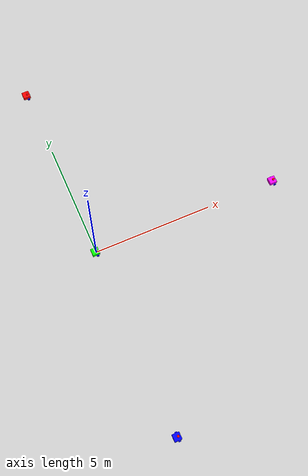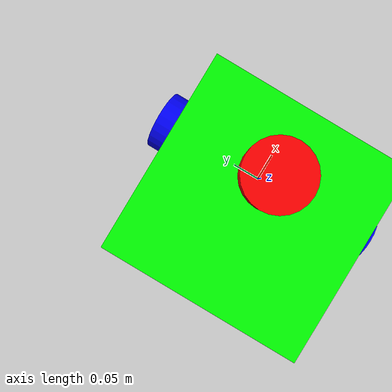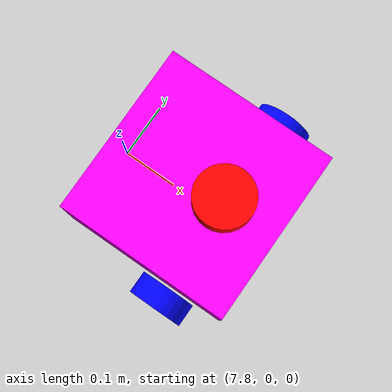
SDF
<?xml version="1.0" ?>
<sdf version="1.9">
    <world name="followTheLeader">
        <physics name="1ms" type="ignored">
            <max_step_size>0.001</max_step_size>
            <real_time_factor>1.0</real_time_factor>
        </physics>
        <plugin
        filename="libignition-gazebo-physics-system.so"
        name="ignition::gazebo::systems::Physics">
        </plugin>
        <plugin
        filename="libignition-gazebo-user-commands-system.so"
        name="ignition::gazebo::systems::UserCommands">
        </plugin>
        <plugin
        filename="libignition-gazebo-scene-broadcaster-system.so"
        name="ignition::gazebo::systems::SceneBroadcaster">
        </plugin>

        <plugin
        filename="libignition-gazebo-sensors-system.so"
        name="ignition::gazebo::systems::Sensors">
            <render_engine>ogre2</render_engine>
        </plugin>

        <light type="directional" name="sun">
            <cast_shadows>true</cast_shadows>
            <pose>0 0 10 0 0 0</pose>
            <diffuse>0.8 0.8 0.8 1</diffuse>
            <specular>0.2 0.2 0.2 1</specular>
            <attenuation>
                <range>1000</range>
                <constant>0.9</constant>
                <linear>0.01</linear>
                <quadratic>0.001</quadratic>
            </attenuation>
            <direction>0.5 0.5 -0.9</direction>
        </light>

        <model name="ground_plane">
            <static>true</static>
            <link name="link">
                <collision name="collision">
                    <geometry>
                        <plane>
                            <normal>0 0 1</normal>
                        </plane>
                    </geometry>
                </collision>
                <visual name="visual">
                    <geometry>
                        <plane>
                            <normal>0 0 1</normal>
                            <size>100 100</size>
                        </plane>
                    </geometry>
                    <material>
                        <ambient>0.8 0.8 0.8 1</ambient>
                        <diffuse>0.8 0.8 0.8 1</diffuse>
                        <specular>0.8 0.8 0.8 1</specular>
                    </material>
                </visual>
            </link>
        </model>

        <model name="rabbitRed">
            <pose>0 8 0 0 0 0</pose>
            <include>
                <name>rabbitRed</name>
                <uri>file://rabbitRed.sdf</uri>
            </include>
        </model>

        <model name="rabbitGreen">
            <pose>0 0 0 0 0 0</pose>
            <include>
                <name>rabbitGreen</name>
                <uri>file://rabbitGreen.sdf</uri>
            </include>
        </model>

        <model name="rabbitBlue">
            <pose>0 -8 0 0 0 0</pose>
            <include>
                <name>rabbitBlue</name>
                <uri>file://rabbitBlue.sdf</uri>
            </include>
        </model>

        <model name="chase">
            <pose>8 0 0 0 0 0</pose>
            <include>
                <name>chase</name>
                <uri>file://chase.sdf</uri>
            </include>
        </model>
    </world>
</sdf>

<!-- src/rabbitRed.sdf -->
<sdf version='1.9'>
  <model name='robot'>
    <link name='base_link'>
      <inertial>
        <pose>0.103125 0 0.0340625 0 0 0</pose>
        <mass>1.6000000000000001</mass>
        <inertia>
          <ixx>0.0096094270833333318</ixx>
          <ixy>0</ixy>
          <ixz>0.0037453124999999999</ixz>
          <iyy>0.013443802083333329</iyy>
          <iyz>0</iyz>
          <izz>0.012459375</izz>
        </inertia>
      </inertial>
      <collision name='base_link_fixed_joint_lump__chassis_collision'>
        <pose>0.04999999999999999 0 0.075 0 0 0</pose>
        <geometry>
          <box>
            <size>0.3 0.3 0.15</size>
          </box>
        </geometry>
      </collision>
      <collision name='base_link_fixed_joint_lump__caster_wheel_collision_1'>
        <pose>0.14 0 0 0 0 0</pose>
        <geometry>
          <sphere>
            <radius>0.050000000000000003</radius>
          </sphere>
        </geometry>
        <surface>
          <contact>
            <ode/>
          </contact>
          <friction>
            <ode>
              <mu>0</mu>
              <mu2>0</mu2>
            </ode>
          </friction>
        </surface>
      </collision>
      <collision name='base_link_fixed_joint_lump__laser_frame_collision_2'>
        <pose>0 0 0.17 0 0 0</pose>
        <geometry>
          <cylinder>
            <length>0.040000000000000001</length>
            <radius>0.050000000000000003</radius>
          </cylinder>
        </geometry>
        <surface>
          <contact>
            <ode/>
          </contact>
          <friction>
            <ode/>
          </friction>
        </surface>
      </collision>
      <visual name='base_link_fixed_joint_lump__chassis_visual'>
        <pose>0.04999999999999999 0 0.075 0 0 0</pose>
        <geometry>
          <box>
            <size>0.3 0.3 0.15</size>
          </box>
        </geometry>
        <material>
          <diffuse>1 0 0 1</diffuse>
          <ambient>1 0 0 1</ambient>
        </material>
      </visual>
      <visual name='base_link_fixed_joint_lump__camera_link_visual_1'>
        <pose>0.205 0 0.08 0 0 0</pose>
        <geometry>
          <box>
            <size>0.01 0.03 0.03</size>
          </box>
        </geometry>
        <material>
          <diffuse>1 0 0 1</diffuse>
          <ambient>1 0 0 1</ambient>
        </material>
      </visual>
      <visual name='base_link_fixed_joint_lump__caster_wheel_visual_2'>
        <pose>0.14 0 0 0 0 0</pose>
        <geometry>
          <sphere>
            <radius>0.050000000000000003</radius>
          </sphere>
        </geometry>
        <material>
          <diffuse>0 0 1 1</diffuse>
          <ambient>0 0 1 1</ambient>
        </material>
      </visual>
      <visual name='base_link_fixed_joint_lump__laser_frame_visual_3'>
        <pose>0 0 0.17 0 0 0</pose>
        <geometry>
          <cylinder>
            <length>0.040000000000000001</length>
            <radius>0.050000000000000003</radius>
          </cylinder>
        </geometry>
        <material>
          <diffuse>1 0 0 1</diffuse>
          <ambient>1 0 0 1</ambient>
        </material>
      </visual>
    </link>
    <joint name='left_wheel_joint' type='revolute'>
      <pose relative_to='base_link'>0 0.175 0 -1.570796326794896 0 0</pose>
      <parent>base_link</parent>
      <child>left_wheel</child>
      <axis>
        <xyz>0 0 1</xyz>
        <limit>
          <lower>-10000000000000000</lower>
          <upper>10000000000000000</upper>
        </limit>
        <dynamics>
          <spring_reference>0</spring_reference>
          <spring_stiffness>0</spring_stiffness>
        </dynamics>
      </axis>
    </joint>
    <link name='left_wheel'>
      <pose relative_to='left_wheel_joint'>0 0 0 0 0 0</pose>
      <inertial>
        <pose>0 0 0 0 0 0</pose>
        <mass>0.10000000000000001</mass>
        <inertia>
          <ixx>7.5833333333333352e-05</ixx>
          <ixy>0</ixy>
          <ixz>0</ixz>
          <iyy>7.5833333333333352e-05</iyy>
          <iyz>0</iyz>
          <izz>0.000125</izz>
        </inertia>
      </inertial>
      <collision name='left_wheel_collision'>
        <pose>0 0 0 0 0 0</pose>
        <geometry>
          <cylinder>
            <length>0.040000000000000001</length>
            <radius>0.050000000000000003</radius>
          </cylinder>
        </geometry>
      </collision>
      <visual name='left_wheel_visual'>
        <pose>0 0 0 0 0 0</pose>
        <geometry>
          <cylinder>
            <length>0.040000000000000001</length>
            <radius>0.050000000000000003</radius>
          </cylinder>
        </geometry>
        <material>
          <diffuse>0 0 1 1</diffuse>
          <ambient>0 0 1 1</ambient>
        </material>
      </visual>
    </link>
    <joint name='right_wheel_joint' type='revolute'>
      <pose relative_to='base_link'>0 -0.175 0 1.570796326794896 0 0</pose>
      <parent>base_link</parent>
      <child>right_wheel</child>
      <axis>
        <xyz>0 0 -1</xyz>
        <limit>
          <lower>-10000000000000000</lower>
          <upper>10000000000000000</upper>
        </limit>
        <dynamics>
          <spring_reference>0</spring_reference>
          <spring_stiffness>0</spring_stiffness>
        </dynamics>
      </axis>
    </joint>
    <link name='right_wheel'>
      <pose relative_to='right_wheel_joint'>0 0 0 0 0 0</pose>
      <inertial>
        <pose>0 0 0 0 0 0</pose>
        <mass>0.10000000000000001</mass>
        <inertia>
          <ixx>7.5833333333333352e-05</ixx>
          <ixy>0</ixy>
          <ixz>0</ixz>
          <iyy>7.5833333333333352e-05</iyy>
          <iyz>0</iyz>
          <izz>0.000125</izz>
        </inertia>
      </inertial>
      <collision name='right_wheel_collision'>
        <pose>0 0 0 0 0 0</pose>
        <geometry>
          <cylinder>
            <length>0.040000000000000001</length>
            <radius>0.050000000000000003</radius>
          </cylinder>
        </geometry>
      </collision>
      <visual name='right_wheel_visual'>
        <pose>0 0 0 0 0 0</pose>
        <geometry>
          <cylinder>
            <length>0.040000000000000001</length>
            <radius>0.050000000000000003</radius>
          </cylinder>
        </geometry>
        <material>
          <diffuse>0 0 1 1</diffuse>
          <ambient>0 0 1 1</ambient>
        </material>
      </visual>
    </link>
    <pose>0 0 0.05 0 0 3.141592653589793</pose>
    <plugin name='ignition::gazebo::systems::DiffDrive' filename='libignition-gazebo-diff-drive-system.so'>
      <left_joint>left_wheel_joint</left_joint>
      <right_joint>right_wheel_joint</right_joint>
      <wheel_separation>0.3</wheel_separation>
      <wheel_radius>0.05</wheel_radius>
      <odom_publish_frequency>10</odom_publish_frequency>
      <topic>cmd_vel_red</topic>
    </plugin>
    <plugin name='ignition::gazebo::systems::JointStatePublisher' filename='libignition-gazebo-joint-state-publisher-system'/>
    <plugin name='ignition::gazebo::systems::OdometryPublisher' filename='libignition-gazebo-odometry-publisher-system'>
      <odom_frame>world</odom_frame>
      <robot_base_frame>base_link</robot_base_frame>
    </plugin>
    <frame name='camera_optical_joint' attached_to='camera_link'>
      <pose>0 0 0 -1.5708 -0 -1.5708</pose>
    </frame>
    <frame name='camera_link_optical' attached_to='camera_optical_joint'/>
    <frame name='camera_joint' attached_to='chassis'>
      <pose>0.305 0 0.08 0 -0 0</pose>
    </frame>
    <frame name='camera_link' attached_to='camera_joint'/>
    <frame name='caster_wheel_joint' attached_to='chassis'>
      <pose>0.24 0 0 0 -0 0</pose>
    </frame>
    <frame name='caster_wheel' attached_to='caster_wheel_joint'/>
    <frame name='laser_joint' attached_to='chassis'>
      <pose>0.1 0 0.17 0 -0 0</pose>
    </frame>
    <frame name='laser_frame' attached_to='laser_joint'/>
    <frame name='chassis_joint' attached_to='base_link'>
      <pose>-0.1 0 0 0 -0 0</pose>
    </frame>
    <frame name='chassis' attached_to='chassis_joint'/>
  </model>
</sdf>

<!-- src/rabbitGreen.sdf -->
<sdf version='1.9'>
  <model name='robot'>
    <link name='base_link'>
      <inertial>
        <pose>0.103125 0 0.0340625 0 0 0</pose>
        <mass>1.6000000000000001</mass>
        <inertia>
          <ixx>0.0096094270833333318</ixx>
          <ixy>0</ixy>
          <ixz>0.0037453124999999999</ixz>
          <iyy>0.013443802083333329</iyy>
          <iyz>0</iyz>
          <izz>0.012459375</izz>
        </inertia>
      </inertial>
      <collision name='base_link_fixed_joint_lump__chassis_collision'>
        <pose>0.04999999999999999 0 0.075 0 0 0</pose>
        <geometry>
          <box>
            <size>0.3 0.3 0.15</size>
          </box>
        </geometry>
      </collision>
      <collision name='base_link_fixed_joint_lump__caster_wheel_collision_1'>
        <pose>0.14 0 0 0 0 0</pose>
        <geometry>
          <sphere>
            <radius>0.050000000000000003</radius>
          </sphere>
        </geometry>
        <surface>
          <contact>
            <ode/>
          </contact>
          <friction>
            <ode>
              <mu>0</mu>
              <mu2>0</mu2>
            </ode>
          </friction>
        </surface>
      </collision>
      <collision name='base_link_fixed_joint_lump__laser_frame_collision_2'>
        <pose>0 0 0.17 0 0 0</pose>
        <geometry>
          <cylinder>
            <length>0.040000000000000001</length>
            <radius>0.050000000000000003</radius>
          </cylinder>
        </geometry>
        <surface>
          <contact>
            <ode/>
          </contact>
          <friction>
            <ode/>
          </friction>
        </surface>
      </collision>
      <visual name='base_link_fixed_joint_lump__chassis_visual'>
        <pose>0.04999999999999999 0 0.075 0 0 0</pose>
        <geometry>
          <box>
            <size>0.3 0.3 0.15</size>
          </box>
        </geometry>
        <material>
          <diffuse>0 1 0 1</diffuse>
          <ambient>0 1 0 1</ambient>
        </material>
      </visual>
      <visual name='base_link_fixed_joint_lump__camera_link_visual_1'>
        <pose>0.205 0 0.08 0 0 0</pose>
        <geometry>
          <box>
            <size>0.01 0.03 0.03</size>
          </box>
        </geometry>
        <material>
          <diffuse>1 0 0 1</diffuse>
          <ambient>1 0 0 1</ambient>
        </material>
      </visual>
      <visual name='base_link_fixed_joint_lump__caster_wheel_visual_2'>
        <pose>0.14 0 0 0 0 0</pose>
        <geometry>
          <sphere>
            <radius>0.050000000000000003</radius>
          </sphere>
        </geometry>
        <material>
          <diffuse>0 0 1 1</diffuse>
          <ambient>0 0 1 1</ambient>
        </material>
      </visual>
      <visual name='base_link_fixed_joint_lump__laser_frame_visual_3'>
        <pose>0 0 0.17 0 0 0</pose>
        <geometry>
          <cylinder>
            <length>0.040000000000000001</length>
            <radius>0.050000000000000003</radius>
          </cylinder>
        </geometry>
        <material>
          <diffuse>1 0 0 1</diffuse>
          <ambient>1 0 0 1</ambient>
        </material>
      </visual>
    </link>
    <joint name='left_wheel_joint' type='revolute'>
      <pose relative_to='base_link'>0 0.175 0 -1.570796326794896 0 0</pose>
      <parent>base_link</parent>
      <child>left_wheel</child>
      <axis>
        <xyz>0 0 1</xyz>
        <limit>
          <lower>-10000000000000000</lower>
          <upper>10000000000000000</upper>
        </limit>
        <dynamics>
          <spring_reference>0</spring_reference>
          <spring_stiffness>0</spring_stiffness>
        </dynamics>
      </axis>
    </joint>
    <link name='left_wheel'>
      <pose relative_to='left_wheel_joint'>0 0 0 0 0 0</pose>
      <inertial>
        <pose>0 0 0 0 0 0</pose>
        <mass>0.10000000000000001</mass>
        <inertia>
          <ixx>7.5833333333333352e-05</ixx>
          <ixy>0</ixy>
          <ixz>0</ixz>
          <iyy>7.5833333333333352e-05</iyy>
          <iyz>0</iyz>
          <izz>0.000125</izz>
        </inertia>
      </inertial>
      <collision name='left_wheel_collision'>
        <pose>0 0 0 0 0 0</pose>
        <geometry>
          <cylinder>
            <length>0.040000000000000001</length>
            <radius>0.050000000000000003</radius>
          </cylinder>
        </geometry>
      </collision>
      <visual name='left_wheel_visual'>
        <pose>0 0 0 0 0 0</pose>
        <geometry>
          <cylinder>
            <length>0.040000000000000001</length>
            <radius>0.050000000000000003</radius>
          </cylinder>
        </geometry>
        <material>
          <diffuse>0 0 1 1</diffuse>
          <ambient>0 0 1 1</ambient>
        </material>
      </visual>
    </link>
    <joint name='right_wheel_joint' type='revolute'>
      <pose relative_to='base_link'>0 -0.175 0 1.570796326794896 0 0</pose>
      <parent>base_link</parent>
      <child>right_wheel</child>
      <axis>
        <xyz>0 0 -1</xyz>
        <limit>
          <lower>-10000000000000000</lower>
          <upper>10000000000000000</upper>
        </limit>
        <dynamics>
          <spring_reference>0</spring_reference>
          <spring_stiffness>0</spring_stiffness>
        </dynamics>
      </axis>
    </joint>
    <link name='right_wheel'>
      <pose relative_to='right_wheel_joint'>0 0 0 0 0 0</pose>
      <inertial>
        <pose>0 0 0 0 0 0</pose>
        <mass>0.10000000000000001</mass>
        <inertia>
          <ixx>7.5833333333333352e-05</ixx>
          <ixy>0</ixy>
          <ixz>0</ixz>
          <iyy>7.5833333333333352e-05</iyy>
          <iyz>0</iyz>
          <izz>0.000125</izz>
        </inertia>
      </inertial>
      <collision name='right_wheel_collision'>
        <pose>0 0 0 0 0 0</pose>
        <geometry>
          <cylinder>
            <length>0.040000000000000001</length>
            <radius>0.050000000000000003</radius>
          </cylinder>
        </geometry>
      </collision>
      <visual name='right_wheel_visual'>
        <pose>0 0 0 0 0 0</pose>
        <geometry>
          <cylinder>
            <length>0.040000000000000001</length>
            <radius>0.050000000000000003</radius>
          </cylinder>
        </geometry>
        <material>
          <diffuse>0 0 1 1</diffuse>
          <ambient>0 0 1 1</ambient>
        </material>
      </visual>
    </link>
    <pose>0 0 0.05 0 0 3.141592653589793</pose>
    <plugin name='ignition::gazebo::systems::DiffDrive' filename='libignition-gazebo-diff-drive-system.so'>
      <left_joint>left_wheel_joint</left_joint>
      <right_joint>right_wheel_joint</right_joint>
      <wheel_separation>0.3</wheel_separation>
      <wheel_radius>0.05</wheel_radius>
      <odom_publish_frequency>10</odom_publish_frequency>
      <topic>cmd_vel_green</topic>
    </plugin>
    <plugin name='ignition::gazebo::systems::JointStatePublisher' filename='libignition-gazebo-joint-state-publisher-system'/>
    <plugin name='ignition::gazebo::systems::OdometryPublisher' filename='libignition-gazebo-odometry-publisher-system'>
      <odom_frame>world</odom_frame>
      <robot_base_frame>base_link</robot_base_frame>
    </plugin>
    <frame name='camera_optical_joint' attached_to='camera_link'>
      <pose>0 0 0 -1.5708 -0 -1.5708</pose>
    </frame>
    <frame name='camera_link_optical' attached_to='camera_optical_joint'/>
    <frame name='camera_joint' attached_to='chassis'>
      <pose>0.305 0 0.08 0 -0 0</pose>
    </frame>
    <frame name='camera_link' attached_to='camera_joint'/>
    <frame name='caster_wheel_joint' attached_to='chassis'>
      <pose>0.24 0 0 0 -0 0</pose>
    </frame>
    <frame name='caster_wheel' attached_to='caster_wheel_joint'/>
    <frame name='laser_joint' attached_to='chassis'>
      <pose>0.1 0 0.17 0 -0 0</pose>
    </frame>
    <frame name='laser_frame' attached_to='laser_joint'/>
    <frame name='chassis_joint' attached_to='base_link'>
      <pose>-0.1 0 0 0 -0 0</pose>
    </frame>
    <frame name='chassis' attached_to='chassis_joint'/>
  </model>
</sdf>

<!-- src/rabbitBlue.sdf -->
<sdf version='1.9'>
  <model name='robot'>
    <link name='base_link'>
      <inertial>
        <pose>0.103125 0 0.0340625 0 0 0</pose>
        <mass>1.6000000000000001</mass>
        <inertia>
          <ixx>0.0096094270833333318</ixx>
          <ixy>0</ixy>
          <ixz>0.0037453124999999999</ixz>
          <iyy>0.013443802083333329</iyy>
          <iyz>0</iyz>
          <izz>0.012459375</izz>
        </inertia>
      </inertial>
      <collision name='base_link_fixed_joint_lump__chassis_collision'>
        <pose>0.04999999999999999 0 0.075 0 0 0</pose>
        <geometry>
          <box>
            <size>0.3 0.3 0.15</size>
          </box>
        </geometry>
      </collision>
      <collision name='base_link_fixed_joint_lump__caster_wheel_collision_1'>
        <pose>0.14 0 0 0 0 0</pose>
        <geometry>
          <sphere>
            <radius>0.050000000000000003</radius>
          </sphere>
        </geometry>
        <surface>
          <contact>
            <ode/>
          </contact>
          <friction>
            <ode>
              <mu>0</mu>
              <mu2>0</mu2>
            </ode>
          </friction>
        </surface>
      </collision>
      <collision name='base_link_fixed_joint_lump__laser_frame_collision_2'>
        <pose>0 0 0.17 0 0 0</pose>
        <geometry>
          <cylinder>
            <length>0.040000000000000001</length>
            <radius>0.050000000000000003</radius>
          </cylinder>
        </geometry>
        <surface>
          <contact>
            <ode/>
          </contact>
          <friction>
            <ode/>
          </friction>
        </surface>
      </collision>
      <visual name='base_link_fixed_joint_lump__chassis_visual'>
        <pose>0.04999999999999999 0 0.075 0 0 0</pose>
        <geometry>
          <box>
            <size>0.3 0.3 0.15</size>
          </box>
        </geometry>
        <material>
          <diffuse>0 0 1 1</diffuse>
          <ambient>0 0 1 1</ambient>
        </material>
      </visual>
      <visual name='base_link_fixed_joint_lump__camera_link_visual_1'>
        <pose>0.205 0 0.08 0 0 0</pose>
        <geometry>
          <box>
            <size>0.01 0.03 0.03</size>
          </box>
        </geometry>
        <material>
          <diffuse>1 0 0 1</diffuse>
          <ambient>1 0 0 1</ambient>
        </material>
      </visual>
      <visual name='base_link_fixed_joint_lump__caster_wheel_visual_2'>
        <pose>0.14 0 0 0 0 0</pose>
        <geometry>
          <sphere>
            <radius>0.050000000000000003</radius>
          </sphere>
        </geometry>
        <material>
          <diffuse>0 0 1 1</diffuse>
          <ambient>0 0 1 1</ambient>
        </material>
      </visual>
      <visual name='base_link_fixed_joint_lump__laser_frame_visual_3'>
        <pose>0 0 0.17 0 0 0</pose>
        <geometry>
          <cylinder>
            <length>0.040000000000000001</length>
            <radius>0.050000000000000003</radius>
          </cylinder>
        </geometry>
        <material>
          <diffuse>1 0 0 1</diffuse>
          <ambient>1 0 0 1</ambient>
        </material>
      </visual>
    </link>
    <joint name='left_wheel_joint' type='revolute'>
      <pose relative_to='base_link'>0 0.175 0 -1.570796326794896 0 0</pose>
      <parent>base_link</parent>
      <child>left_wheel</child>
      <axis>
        <xyz>0 0 1</xyz>
        <limit>
          <lower>-10000000000000000</lower>
          <upper>10000000000000000</upper>
        </limit>
        <dynamics>
          <spring_reference>0</spring_reference>
          <spring_stiffness>0</spring_stiffness>
        </dynamics>
      </axis>
    </joint>
    <link name='left_wheel'>
      <pose relative_to='left_wheel_joint'>0 0 0 0 0 0</pose>
      <inertial>
        <pose>0 0 0 0 0 0</pose>
        <mass>0.10000000000000001</mass>
        <inertia>
          <ixx>7.5833333333333352e-05</ixx>
          <ixy>0</ixy>
          <ixz>0</ixz>
          <iyy>7.5833333333333352e-05</iyy>
          <iyz>0</iyz>
          <izz>0.000125</izz>
        </inertia>
      </inertial>
      <collision name='left_wheel_collision'>
        <pose>0 0 0 0 0 0</pose>
        <geometry>
          <cylinder>
            <length>0.040000000000000001</length>
            <radius>0.050000000000000003</radius>
          </cylinder>
        </geometry>
      </collision>
      <visual name='left_wheel_visual'>
        <pose>0 0 0 0 0 0</pose>
        <geometry>
          <cylinder>
            <length>0.040000000000000001</length>
            <radius>0.050000000000000003</radius>
          </cylinder>
        </geometry>
        <material>
          <diffuse>0 0 1 1</diffuse>
          <ambient>0 0 1 1</ambient>
        </material>
      </visual>
    </link>
    <joint name='right_wheel_joint' type='revolute'>
      <pose relative_to='base_link'>0 -0.175 0 1.570796326794896 0 0</pose>
      <parent>base_link</parent>
      <child>right_wheel</child>
      <axis>
        <xyz>0 0 -1</xyz>
        <limit>
          <lower>-10000000000000000</lower>
          <upper>10000000000000000</upper>
        </limit>
        <dynamics>
          <spring_reference>0</spring_reference>
          <spring_stiffness>0</spring_stiffness>
        </dynamics>
      </axis>
    </joint>
    <link name='right_wheel'>
      <pose relative_to='right_wheel_joint'>0 0 0 0 0 0</pose>
      <inertial>
        <pose>0 0 0 0 0 0</pose>
        <mass>0.10000000000000001</mass>
        <inertia>
          <ixx>7.5833333333333352e-05</ixx>
          <ixy>0</ixy>
          <ixz>0</ixz>
          <iyy>7.5833333333333352e-05</iyy>
          <iyz>0</iyz>
          <izz>0.000125</izz>
        </inertia>
      </inertial>
      <collision name='right_wheel_collision'>
        <pose>0 0 0 0 0 0</pose>
        <geometry>
          <cylinder>
            <length>0.040000000000000001</length>
            <radius>0.050000000000000003</radius>
          </cylinder>
        </geometry>
      </collision>
      <visual name='right_wheel_visual'>
        <pose>0 0 0 0 0 0</pose>
        <geometry>
          <cylinder>
            <length>0.040000000000000001</length>
            <radius>0.050000000000000003</radius>
          </cylinder>
        </geometry>
        <material>
          <diffuse>0 0 1 1</diffuse>
          <ambient>0 0 1 1</ambient>
        </material>
      </visual>
    </link>
    <pose>0 0 0.05 0 0 3.141592653589793</pose>
    <plugin name='ignition::gazebo::systems::DiffDrive' filename='libignition-gazebo-diff-drive-system.so'>
      <left_joint>left_wheel_joint</left_joint>
      <right_joint>right_wheel_joint</right_joint>
      <wheel_separation>0.3</wheel_separation>
      <wheel_radius>0.05</wheel_radius>
      <odom_publish_frequency>10</odom_publish_frequency>
      <topic>cmd_vel_blue</topic>
    </plugin>
    <plugin name='ignition::gazebo::systems::JointStatePublisher' filename='libignition-gazebo-joint-state-publisher-system'/>
    <plugin name='ignition::gazebo::systems::OdometryPublisher' filename='libignition-gazebo-odometry-publisher-system'>
      <odom_frame>world</odom_frame>
      <robot_base_frame>base_link</robot_base_frame>
    </plugin>
    <frame name='camera_optical_joint' attached_to='camera_link'>
      <pose>0 0 0 -1.5708 -0 -1.5708</pose>
    </frame>
    <frame name='camera_link_optical' attached_to='camera_optical_joint'/>
    <frame name='camera_joint' attached_to='chassis'>
      <pose>0.305 0 0.08 0 -0 0</pose>
    </frame>
    <frame name='camera_link' attached_to='camera_joint'/>
    <frame name='caster_wheel_joint' attached_to='chassis'>
      <pose>0.24 0 0 0 -0 0</pose>
    </frame>
    <frame name='caster_wheel' attached_to='caster_wheel_joint'/>
    <frame name='laser_joint' attached_to='chassis'>
      <pose>0.1 0 0.17 0 -0 0</pose>
    </frame>
    <frame name='laser_frame' attached_to='laser_joint'/>
    <frame name='chassis_joint' attached_to='base_link'>
      <pose>-0.1 0 0 0 -0 0</pose>
    </frame>
    <frame name='chassis' attached_to='chassis_joint'/>
  </model>
</sdf>

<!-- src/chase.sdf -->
<sdf version='1.9'>
  <model name='robot'>
    <link name='base_link'>
      <inertial>
        <pose>0.103125 0 0.0340625 0 0 0</pose>
        <mass>1.6000000000000001</mass>
        <inertia>
          <ixx>0.0096094270833333318</ixx>
          <ixy>0</ixy>
          <ixz>0.0037453124999999999</ixz>
          <iyy>0.013443802083333329</iyy>
          <iyz>0</iyz>
          <izz>0.012459375</izz>
        </inertia>
      </inertial>
      <collision name='base_link_fixed_joint_lump__chassis_collision'>
        <pose>0.04999999999999999 0 0.075 0 0 0</pose>
        <geometry>
          <box>
            <size>0.3 0.3 0.15</size>
          </box>
        </geometry>
      </collision>
      <collision name='base_link_fixed_joint_lump__caster_wheel_collision_1'>
        <pose>0.14 0 0 0 0 0</pose>
        <geometry>
          <sphere>
            <radius>0.050000000000000003</radius>
          </sphere>
        </geometry>
        <surface>
          <contact>
            <ode/>
          </contact>
          <friction>
            <ode>
              <mu>0</mu>
              <mu2>0</mu2>
            </ode>
          </friction>
        </surface>
      </collision>
      <collision name='base_link_fixed_joint_lump__laser_frame_collision_2'>
        <pose>0 0 0.17 0 0 0</pose>
        <geometry>
          <cylinder>
            <length>0.040000000000000001</length>
            <radius>0.050000000000000003</radius>
          </cylinder>
        </geometry>
        <surface>
          <contact>
            <ode/>
          </contact>
          <friction>
            <ode/>
          </friction>
        </surface>
      </collision>
      <visual name='base_link_fixed_joint_lump__chassis_visual'>
        <pose>0.04999999999999999 0 0.075 0 0 0</pose>
        <geometry>
          <box>
            <size>0.3 0.3 0.15</size>
          </box>
        </geometry>
        <material>
          <diffuse>1 0 1 1</diffuse>
          <ambient>1 0 1 1</ambient>
        </material>
      </visual>
      <visual name='base_link_fixed_joint_lump__camera_link_visual_1'>
        <pose>0.205 0 0.08 0 0 0</pose>
        <geometry>
          <box>
            <size>0.01 0.03 0.03</size>
          </box>
        </geometry>
        <material>
          <diffuse>1 0 0 1</diffuse>
          <ambient>1 0 0 1</ambient>
        </material>
      </visual>
      <visual name='base_link_fixed_joint_lump__caster_wheel_visual_2'>
        <pose>0.14 0 0 0 0 0</pose>
        <geometry>
          <sphere>
            <radius>0.050000000000000003</radius>
          </sphere>
        </geometry>
        <material>
          <diffuse>0 0 1 1</diffuse>
          <ambient>0 0 1 1</ambient>
        </material>
      </visual>
      <visual name='base_link_fixed_joint_lump__laser_frame_visual_3'>
        <pose>0 0 0.17 0 0 0</pose>
        <geometry>
          <cylinder>
            <length>0.040000000000000001</length>
            <radius>0.050000000000000003</radius>
          </cylinder>
        </geometry>
        <material>
          <diffuse>1 0 0 1</diffuse>
          <ambient>1 0 0 1</ambient>
        </material>
      </visual>
      <sensor name='camera' type='camera'>
        <camera>
          <horizontal_fov>1.089</horizontal_fov>
          <image>
            <format>R8G8B8</format>
            <width>640</width>
            <height>480</height>
          </image>
          <clip>
            <near>0.050000000000000003</near>
            <far>12</far>
          </clip>
        </camera>
        <always_on>true</always_on>
        <update_rate>30</update_rate>
        <visualize>true</visualize>
        <topic>camera/image_raw</topic>
        <pose>0.205 0 0.08 0 -0 0</pose>
      </sensor>
    </link>
    <joint name='left_wheel_joint' type='revolute'>
      <pose relative_to='base_link'>0 0.175 0 -1.570796326794896 0 0</pose>
      <parent>base_link</parent>
      <child>left_wheel</child>
      <axis>
        <xyz>0 0 1</xyz>
        <limit>
          <lower>-10000000000000000</lower>
          <upper>10000000000000000</upper>
        </limit>
        <dynamics>
          <spring_reference>0</spring_reference>
          <spring_stiffness>0</spring_stiffness>
        </dynamics>
      </axis>
    </joint>
    <link name='left_wheel'>
      <pose relative_to='left_wheel_joint'>0 0 0 0 0 0</pose>
      <inertial>
        <pose>0 0 0 0 0 0</pose>
        <mass>0.10000000000000001</mass>
        <inertia>
          <ixx>7.5833333333333352e-05</ixx>
          <ixy>0</ixy>
          <ixz>0</ixz>
          <iyy>7.5833333333333352e-05</iyy>
          <iyz>0</iyz>
          <izz>0.000125</izz>
        </inertia>
      </inertial>
      <collision name='left_wheel_collision'>
        <pose>0 0 0 0 0 0</pose>
        <geometry>
          <cylinder>
            <length>0.040000000000000001</length>
            <radius>0.050000000000000003</radius>
          </cylinder>
        </geometry>
      </collision>
      <visual name='left_wheel_visual'>
        <pose>0 0 0 0 0 0</pose>
        <geometry>
          <cylinder>
            <length>0.040000000000000001</length>
            <radius>0.050000000000000003</radius>
          </cylinder>
        </geometry>
        <material>
          <diffuse>0 0 1 1</diffuse>
          <ambient>0 0 1 1</ambient>
        </material>
      </visual>
    </link>
    <joint name='right_wheel_joint' type='revolute'>
      <pose relative_to='base_link'>0 -0.175 0 1.570796326794896 0 0</pose>
      <parent>base_link</parent>
      <child>right_wheel</child>
      <axis>
        <xyz>0 0 -1</xyz>
        <limit>
          <lower>-10000000000000000</lower>
          <upper>10000000000000000</upper>
        </limit>
        <dynamics>
          <spring_reference>0</spring_reference>
          <spring_stiffness>0</spring_stiffness>
        </dynamics>
      </axis>
    </joint>
    <link name='right_wheel'>
      <pose relative_to='right_wheel_joint'>0 0 0 0 0 0</pose>
      <inertial>
        <pose>0 0 0 0 0 0</pose>
        <mass>0.10000000000000001</mass>
        <inertia>
          <ixx>7.5833333333333352e-05</ixx>
          <ixy>0</ixy>
          <ixz>0</ixz>
          <iyy>7.5833333333333352e-05</iyy>
          <iyz>0</iyz>
          <izz>0.000125</izz>
        </inertia>
      </inertial>
      <collision name='right_wheel_collision'>
        <pose>0 0 0 0 0 0</pose>
        <geometry>
          <cylinder>
            <length>0.040000000000000001</length>
            <radius>0.050000000000000003</radius>
          </cylinder>
        </geometry>
      </collision>
      <visual name='right_wheel_visual'>
        <pose>0 0 0 0 0 0</pose>
        <geometry>
          <cylinder>
            <length>0.040000000000000001</length>
            <radius>0.050000000000000003</radius>
          </cylinder>
        </geometry>
        <material>
          <diffuse>0 0 1 1</diffuse>
          <ambient>0 0 1 1</ambient>
        </material>
      </visual>
    </link>
    <pose>0 0 0.05 0 0 3.141592653589793</pose>
    <plugin name='ignition::gazebo::systems::DiffDrive' filename='libignition-gazebo-diff-drive-system.so'>
      <left_joint>left_wheel_joint</left_joint>
      <right_joint>right_wheel_joint</right_joint>
      <wheel_separation>0.3</wheel_separation>
      <wheel_radius>0.05</wheel_radius>
      <odom_publish_frequency>10</odom_publish_frequency>
      <topic>cmd_vel_chase</topic>
    </plugin>
    <plugin name='ignition::gazebo::systems::JointStatePublisher' filename='libignition-gazebo-joint-state-publisher-system'/>
    <plugin name='ignition::gazebo::systems::OdometryPublisher' filename='libignition-gazebo-odometry-publisher-system'>
      <odom_frame>world</odom_frame>
      <robot_base_frame>base_link</robot_base_frame>
    </plugin>
    <frame name='camera_optical_joint' attached_to='camera_link'>
      <pose>0 0 0 -1.5708 -0 -1.5708</pose>
    </frame>
    <frame name='camera_link_optical' attached_to='camera_optical_joint'/>
    <frame name='camera_joint' attached_to='chassis'>
      <pose>0.305 0 0.08 0 -0 0</pose>
    </frame>
    <frame name='camera_link' attached_to='camera_joint'/>
    <frame name='caster_wheel_joint' attached_to='chassis'>
      <pose>0.24 0 0 0 -0 0</pose>
    </frame>
    <frame name='caster_wheel' attached_to='caster_wheel_joint'/>
    <frame name='laser_joint' attached_to='chassis'>
      <pose>0.1 0 0.17 0 -0 0</pose>
    </frame>
    <frame name='laser_frame' attached_to='laser_joint'/>
    <frame name='chassis_joint' attached_to='base_link'>
      <pose>-0.1 0 0 0 -0 0</pose>
    </frame>
    <frame name='chassis' attached_to='chassis_joint'/>
  </model>
</sdf>
